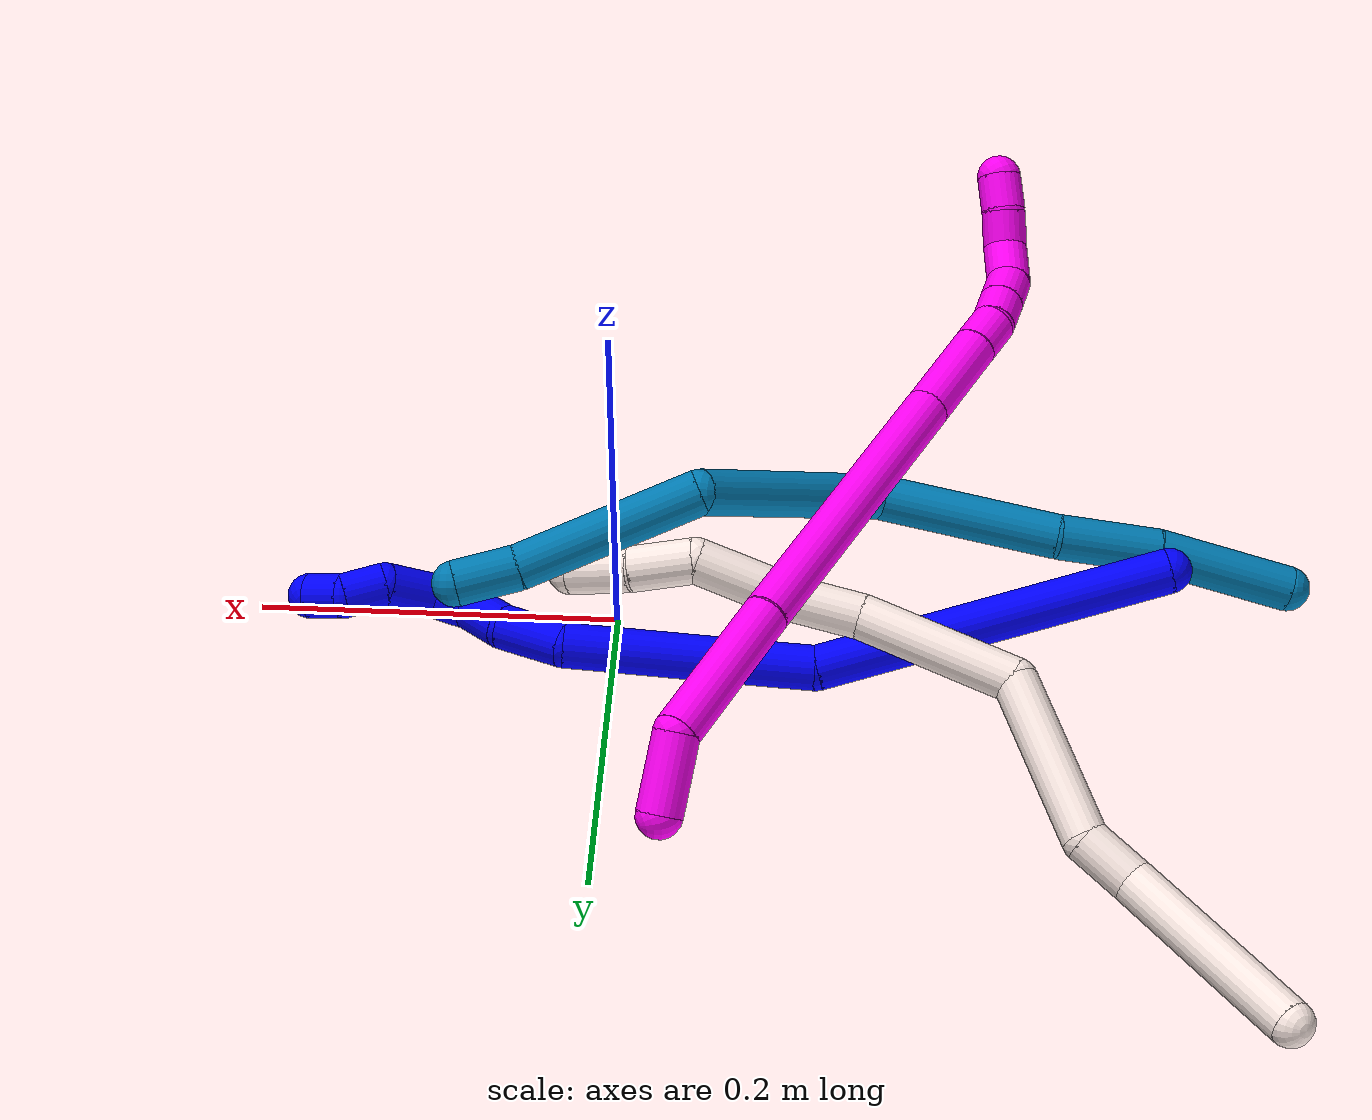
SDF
<sdf version="1.7">
 <world name="default">
  <model name="1">
   <static>0</static>
   <link name="1">
    <collision name="collision-cylinder-e_1_1_4">
     <pose>0.096106 0.019782 0.01966 -0.788488 1.28836 -0.605694</pose>
     <geometry><cylinder><radius>0.0125</radius><length>0.200142</length></cylinder></geometry>
     <surface>
      <friction><ode><mu>1.16</mu><mu2>1.16</mu2><slip1>0</slip1><slip2>0</slip2></ode></friction>
      <contact><ode><kp>1e+06</kp><kd>1</kd><max_vel>0</max_vel><min_depth>0.001</min_depth></ode></contact>
     </surface>
    </collision>
    <visual name="visual-cylinder-e_1_1_4">
     <pose>0.096106 0.019782 0.01966 -0.788488 1.28836 -0.605694</pose>
     <geometry><cylinder><radius>0.0125</radius><length>0.200142</length></cylinder></geometry>
     <material><ambient>0 0 1 1</ambient></material>
    </visual>
    <collision name="collision-cylinder-e_2_4_5">
     <pose>0.215535 0.038448 0.037711 2.53529 1.48702 2.48583</pose>
     <geometry><cylinder><radius>0.0125</radius><length>0.04681</length></cylinder></geometry>
     <surface>
      <friction><ode><mu>1.16</mu><mu2>1.16</mu2><slip1>0</slip1><slip2>0</slip2></ode></friction>
      <contact><ode><kp>1e+06</kp><kd>1</kd><max_vel>0</max_vel><min_depth>0.001</min_depth></ode></contact>
     </surface>
    </collision>
    <visual name="visual-cylinder-e_2_4_5">
     <pose>0.215535 0.038448 0.037711 2.53529 1.48702 2.48583</pose>
     <geometry><cylinder><radius>0.0125</radius><length>0.04681</length></cylinder></geometry>
     <material><ambient>0 0 1 1</ambient></material>
    </visual>
    <collision name="collision-cylinder-e_3_5_6">
     <pose>0.284691 0.032471 0.036363 1.51694 1.46499 1.41158</pose>
     <geometry><cylinder><radius>0.0125</radius><length>0.092182</length></cylinder></geometry>
     <surface>
      <friction><ode><mu>1.16</mu><mu2>1.16</mu2><slip1>0</slip1><slip2>0</slip2></ode></friction>
      <contact><ode><kp>1e+06</kp><kd>1</kd><max_vel>0</max_vel><min_depth>0.001</min_depth></ode></contact>
     </surface>
    </collision>
    <visual name="visual-cylinder-e_3_5_6">
     <pose>0.284691 0.032471 0.036363 1.51694 1.46499 1.41158</pose>
     <geometry><cylinder><radius>0.0125</radius><length>0.092182</length></cylinder></geometry>
     <material><ambient>0 0 1 1</ambient></material>
    </visual>
    <collision name="collision-cylinder-e_4_6_7">
     <pose>0.347883 0.026488 0.029603 2.98312 1.18197 2.90602</pose>
     <geometry><cylinder><radius>0.0125</radius><length>0.037518</length></cylinder></geometry>
     <surface>
      <friction><ode><mu>1.16</mu><mu2>1.16</mu2><slip1>0</slip1><slip2>0</slip2></ode></friction>
      <contact><ode><kp>1e+06</kp><kd>1</kd><max_vel>0</max_vel><min_depth>0.001</min_depth></ode></contact>
     </surface>
    </collision>
    <visual name="visual-cylinder-e_4_6_7">
     <pose>0.347883 0.026488 0.029603 2.98312 1.18197 2.90602</pose>
     <geometry><cylinder><radius>0.0125</radius><length>0.037518</length></cylinder></geometry>
     <material><ambient>0 0 1 1</ambient></material>
    </visual>
    <collision name="collision-cylinder-e_5_7_8">
     <pose>0.37542 0.024804 0.013856 3.0773 0.861122 3.00179</pose>
     <geometry><cylinder><radius>0.0125</radius><length>0.026834</length></cylinder></geometry>
     <surface>
      <friction><ode><mu>1.16</mu><mu2>1.16</mu2><slip1>0</slip1><slip2>0</slip2></ode></friction>
      <contact><ode><kp>1e+06</kp><kd>1</kd><max_vel>0</max_vel><min_depth>0.001</min_depth></ode></contact>
     </surface>
    </collision>
    <visual name="visual-cylinder-e_5_7_8">
     <pose>0.37542 0.024804 0.013856 3.0773 0.861122 3.00179</pose>
     <geometry><cylinder><radius>0.0125</radius><length>0.026834</length></cylinder></geometry>
     <material><ambient>0 0 1 1</ambient></material>
    </visual>
    <collision name="collision-cylinder-e_6_8_9">
     <pose>0.395554 0.022967 0.001731 2.78263 1.22099 2.63414</pose>
     <geometry><cylinder><radius>0.0125</radius><length>0.021196</length></cylinder></geometry>
     <surface>
      <friction><ode><mu>1.16</mu><mu2>1.16</mu2><slip1>0</slip1><slip2>0</slip2></ode></friction>
      <contact><ode><kp>1e+06</kp><kd>1</kd><max_vel>0</max_vel><min_depth>0.001</min_depth></ode></contact>
     </surface>
    </collision>
    <visual name="visual-cylinder-e_6_8_9">
     <pose>0.395554 0.022967 0.001731 2.78263 1.22099 2.63414</pose>
     <geometry><cylinder><radius>0.0125</radius><length>0.021196</length></cylinder></geometry>
     <material><ambient>0 0 1 1</ambient></material>
    </visual>
    <collision name="collision-cylinder-e_7_9_10">
     <pose>0.41833 0.014453 0.003796 0.924021 0.955072 0.504394</pose>
     <geometry><cylinder><radius>0.0125</radius><length>0.031408</length></cylinder></geometry>
     <surface>
      <friction><ode><mu>1.16</mu><mu2>1.16</mu2><slip1>0</slip1><slip2>0</slip2></ode></friction>
      <contact><ode><kp>1e+06</kp><kd>1</kd><max_vel>0</max_vel><min_depth>0.001</min_depth></ode></contact>
     </surface>
    </collision>
    <visual name="visual-cylinder-e_7_9_10">
     <pose>0.41833 0.014453 0.003796 0.924021 0.955072 0.504394</pose>
     <geometry><cylinder><radius>0.0125</radius><length>0.031408</length></cylinder></geometry>
     <material><ambient>0 0 1 1</ambient></material>
    </visual>
    <collision name="collision-cylinder-e_8_10_11">
     <pose>0.442259 0.00829 0.013271 -0.262026 1.21324 -0.18236</pose>
     <geometry><cylinder><radius>0.0125</radius><length>0.023718</length></cylinder></geometry>
     <surface>
      <friction><ode><mu>1.16</mu><mu2>1.16</mu2><slip1>0</slip1><slip2>0</slip2></ode></friction>
      <contact><ode><kp>1e+06</kp><kd>1</kd><max_vel>0</max_vel><min_depth>0.001</min_depth></ode></contact>
     </surface>
    </collision>
    <visual name="visual-cylinder-e_8_10_11">
     <pose>0.442259 0.00829 0.013271 -0.262026 1.21324 -0.18236</pose>
     <geometry><cylinder><radius>0.0125</radius><length>0.023718</length></cylinder></geometry>
     <material><ambient>0 0 1 1</ambient></material>
    </visual>
    <collision name="collision-cylinder-e_9_11_2">
     <pose>0.46304 0.010982 0.014878 -2.54902 1.27993 -2.36333</pose>
     <geometry><cylinder><radius>0.0125</radius><length>0.020191</length></cylinder></geometry>
     <surface>
      <friction><ode><mu>1.16</mu><mu2>1.16</mu2><slip1>0</slip1><slip2>0</slip2></ode></friction>
      <contact><ode><kp>1e+06</kp><kd>1</kd><max_vel>0</max_vel><min_depth>0.001</min_depth></ode></contact>
     </surface>
    </collision>
    <visual name="visual-cylinder-e_9_11_2">
     <pose>0.46304 0.010982 0.014878 -2.54902 1.27993 -2.36333</pose>
     <geometry><cylinder><radius>0.0125</radius><length>0.020191</length></cylinder></geometry>
     <material><ambient>0 0 1 1</ambient></material>
    </visual>
    <collision name="collision-sphere-2">
     <pose>0.472712 0.012599 0.012476 0 -0 0</pose>
     <geometry><sphere><radius>0.0125</radius></sphere></geometry>
     <surface>
      <friction><ode><mu>1.16</mu><mu2>1.16</mu2><slip1>0</slip1><slip2>0</slip2></ode></friction>
      <contact><ode><kp>1e+06</kp><kd>1</kd><max_vel>0</max_vel><min_depth>0.001</min_depth></ode></contact>
     </surface>
    </collision>
    <visual name="visual-sphere-2">
     <pose>0.472712 0.012599 0.012476 0 -0 0</pose>
     <geometry><sphere><radius>0.0125</radius></sphere></geometry>
     <material><ambient>0 0 1 1</ambient></material>
    </visual>
    <collision name="collision-sphere-11">
     <pose>0.453368 0.009365 0.01728 0 -0 0</pose>
     <geometry><sphere><radius>0.0125</radius></sphere></geometry>
     <surface>
      <friction><ode><mu>1.16</mu><mu2>1.16</mu2><slip1>0</slip1><slip2>0</slip2></ode></friction>
      <contact><ode><kp>1e+06</kp><kd>1</kd><max_vel>0</max_vel><min_depth>0.001</min_depth></ode></contact>
     </surface>
    </collision>
    <visual name="visual-sphere-11">
     <pose>0.453368 0.009365 0.01728 0 -0 0</pose>
     <geometry><sphere><radius>0.0125</radius></sphere></geometry>
     <material><ambient>0 0 1 1</ambient></material>
    </visual>
    <collision name="collision-sphere-10">
     <pose>0.43115 0.007214 0.009262 0 -0 0</pose>
     <geometry><sphere><radius>0.0125</radius></sphere></geometry>
     <surface>
      <friction><ode><mu>1.16</mu><mu2>1.16</mu2><slip1>0</slip1><slip2>0</slip2></ode></friction>
      <contact><ode><kp>1e+06</kp><kd>1</kd><max_vel>0</max_vel><min_depth>0.001</min_depth></ode></contact>
     </surface>
    </collision>
    <visual name="visual-sphere-10">
     <pose>0.43115 0.007214 0.009262 0 -0 0</pose>
     <geometry><sphere><radius>0.0125</radius></sphere></geometry>
     <material><ambient>0 0 1 1</ambient></material>
    </visual>
    <collision name="collision-sphere-9">
     <pose>0.40551 0.021691 -0.001669 0 -0 0</pose>
     <geometry><sphere><radius>0.0125</radius></sphere></geometry>
     <surface>
      <friction><ode><mu>1.16</mu><mu2>1.16</mu2><slip1>0</slip1><slip2>0</slip2></ode></friction>
      <contact><ode><kp>1e+06</kp><kd>1</kd><max_vel>0</max_vel><min_depth>0.001</min_depth></ode></contact>
     </surface>
    </collision>
    <visual name="visual-sphere-9">
     <pose>0.40551 0.021691 -0.001669 0 -0 0</pose>
     <geometry><sphere><radius>0.0125</radius></sphere></geometry>
     <material><ambient>0 0 1 1</ambient></material>
    </visual>
    <collision name="collision-sphere-4">
     <pose>0.192212 0.039564 0.03932 0 -0 0</pose>
     <geometry><sphere><radius>0.0125</radius></sphere></geometry>
     <surface>
      <friction><ode><mu>1.16</mu><mu2>1.16</mu2><slip1>0</slip1><slip2>0</slip2></ode></friction>
      <contact><ode><kp>1e+06</kp><kd>1</kd><max_vel>0</max_vel><min_depth>0.001</min_depth></ode></contact>
     </surface>
    </collision>
    <visual name="visual-sphere-4">
     <pose>0.192212 0.039564 0.03932 0 -0 0</pose>
     <geometry><sphere><radius>0.0125</radius></sphere></geometry>
     <material><ambient>0 0 1 1</ambient></material>
    </visual>
    <collision name="collision-sphere-1">
     <geometry><sphere><radius>0.0125</radius></sphere></geometry>
     <surface>
      <friction><ode><mu>1.16</mu><mu2>1.16</mu2><slip1>0</slip1><slip2>0</slip2></ode></friction>
      <contact><ode><kp>1e+06</kp><kd>1</kd><max_vel>0</max_vel><min_depth>0.001</min_depth></ode></contact>
     </surface>
    </collision>
    <visual name="visual-sphere-1">
     <geometry><sphere><radius>0.0125</radius></sphere></geometry>
     <material><ambient>0 0 1 1</ambient></material>
    </visual>
    <collision name="collision-sphere-8">
     <pose>0.385597 0.024243 0.005132 0 -0 0</pose>
     <geometry><sphere><radius>0.0125</radius></sphere></geometry>
     <surface>
      <friction><ode><mu>1.16</mu><mu2>1.16</mu2><slip1>0</slip1><slip2>0</slip2></ode></friction>
      <contact><ode><kp>1e+06</kp><kd>1</kd><max_vel>0</max_vel><min_depth>0.001</min_depth></ode></contact>
     </surface>
    </collision>
    <visual name="visual-sphere-8">
     <pose>0.385597 0.024243 0.005132 0 -0 0</pose>
     <geometry><sphere><radius>0.0125</radius></sphere></geometry>
     <material><ambient>0 0 1 1</ambient></material>
    </visual>
    <collision name="collision-sphere-5">
     <pose>0.238858 0.037332 0.036101 0 -0 0</pose>
     <geometry><sphere><radius>0.0125</radius></sphere></geometry>
     <surface>
      <friction><ode><mu>1.16</mu><mu2>1.16</mu2><slip1>0</slip1><slip2>0</slip2></ode></friction>
      <contact><ode><kp>1e+06</kp><kd>1</kd><max_vel>0</max_vel><min_depth>0.001</min_depth></ode></contact>
     </surface>
    </collision>
    <visual name="visual-sphere-5">
     <pose>0.238858 0.037332 0.036101 0 -0 0</pose>
     <geometry><sphere><radius>0.0125</radius></sphere></geometry>
     <material><ambient>0 0 1 1</ambient></material>
    </visual>
    <collision name="collision-sphere-6">
     <pose>0.330524 0.027611 0.036625 0 -0 0</pose>
     <geometry><sphere><radius>0.0125</radius></sphere></geometry>
     <surface>
      <friction><ode><mu>1.16</mu><mu2>1.16</mu2><slip1>0</slip1><slip2>0</slip2></ode></friction>
      <contact><ode><kp>1e+06</kp><kd>1</kd><max_vel>0</max_vel><min_depth>0.001</min_depth></ode></contact>
     </surface>
    </collision>
    <visual name="visual-sphere-6">
     <pose>0.330524 0.027611 0.036625 0 -0 0</pose>
     <geometry><sphere><radius>0.0125</radius></sphere></geometry>
     <material><ambient>0 0 1 1</ambient></material>
    </visual>
    <collision name="collision-sphere-7">
     <pose>0.365242 0.025366 0.02258 0 -0 0</pose>
     <geometry><sphere><radius>0.0125</radius></sphere></geometry>
     <surface>
      <friction><ode><mu>1.16</mu><mu2>1.16</mu2><slip1>0</slip1><slip2>0</slip2></ode></friction>
      <contact><ode><kp>1e+06</kp><kd>1</kd><max_vel>0</max_vel><min_depth>0.001</min_depth></ode></contact>
     </surface>
    </collision>
    <visual name="visual-sphere-7">
     <pose>0.365242 0.025366 0.02258 0 -0 0</pose>
     <geometry><sphere><radius>0.0125</radius></sphere></geometry>
     <material><ambient>0 0 1 1</ambient></material>
    </visual>
    <inertial>
     <pose>0.240111 0.023541 0.022611 0 -0 0</pose>
     <mass>0.5</mass>
     <inertia>
      <ixx>9.2e-05</ixx>
      <ixy>0</ixy>
      <ixz>0</ixz>
      <iyy>0.000652</iyy>
      <iyz>0</iyz>
      <izz>-0.000866</izz>
     </inertia>
    </inertial>
   </link>
   <pose>-0.3033 -0.001185 0.051091 -1.4149 0.034552 0.002685</pose>
  </model>
  <model name="9">
   <static>0</static>
   <link name="9">
    <collision name="collision-cylinder-e_1_1_4">
     <pose>0.013843 -0.013048 -0.033631 2.77149 0.366415 1.56055</pose>
     <geometry><cylinder><radius>0.0125</radius><length>0.077276</length></cylinder></geometry>
     <surface>
      <friction><ode><mu>1.16</mu><mu2>1.16</mu2><slip1>0</slip1><slip2>0</slip2></ode></friction>
      <contact><ode><kp>1e+06</kp><kd>1</kd><max_vel>0</max_vel><min_depth>0.001</min_depth></ode></contact>
     </surface>
    </collision>
    <visual name="visual-cylinder-e_1_1_4">
     <pose>0.013843 -0.013048 -0.033631 2.77149 0.366415 1.56055</pose>
     <geometry><cylinder><radius>0.0125</radius><length>0.077276</length></cylinder></geometry>
     <material><ambient>0 0.490196 0.709804 1</ambient></material>
    </visual>
    <collision name="collision-cylinder-e_2_4_5">
     <pose>0.038989 -0.032171 -0.092676 2.90696 0.408276 2.1065</pose>
     <geometry><cylinder><radius>0.0125</radius><length>0.056941</length></cylinder></geometry>
     <surface>
      <friction><ode><mu>1.16</mu><mu2>1.16</mu2><slip1>0</slip1><slip2>0</slip2></ode></friction>
      <contact><ode><kp>1e+06</kp><kd>1</kd><max_vel>0</max_vel><min_depth>0.001</min_depth></ode></contact>
     </surface>
    </collision>
    <visual name="visual-cylinder-e_2_4_5">
     <pose>0.038989 -0.032171 -0.092676 2.90696 0.408276 2.1065</pose>
     <geometry><cylinder><radius>0.0125</radius><length>0.056941</length></cylinder></geometry>
     <material><ambient>0 0.490196 0.709804 1</ambient></material>
    </visual>
    <collision name="collision-cylinder-e_3_5_6">
     <pose>0.059519 -0.050879 -0.166397 2.8858 0.182717 1.23801</pose>
     <geometry><cylinder><radius>0.0125</radius><length>0.101553</length></cylinder></geometry>
     <surface>
      <friction><ode><mu>1.16</mu><mu2>1.16</mu2><slip1>0</slip1><slip2>0</slip2></ode></friction>
      <contact><ode><kp>1e+06</kp><kd>1</kd><max_vel>0</max_vel><min_depth>0.001</min_depth></ode></contact>
     </surface>
    </collision>
    <visual name="visual-cylinder-e_3_5_6">
     <pose>0.059519 -0.050879 -0.166397 2.8858 0.182717 1.23801</pose>
     <geometry><cylinder><radius>0.0125</radius><length>0.101553</length></cylinder></geometry>
     <material><ambient>0 0.490196 0.709804 1</ambient></material>
    </visual>
    <collision name="collision-cylinder-e_4_6_7">
     <pose>0.119686 -0.074097 -0.249355 2.84514 0.952565 2.5781</pose>
     <geometry><cylinder><radius>0.0125</radius><length>0.125022</length></cylinder></geometry>
     <surface>
      <friction><ode><mu>1.16</mu><mu2>1.16</mu2><slip1>0</slip1><slip2>0</slip2></ode></friction>
      <contact><ode><kp>1e+06</kp><kd>1</kd><max_vel>0</max_vel><min_depth>0.001</min_depth></ode></contact>
     </surface>
    </collision>
    <visual name="visual-cylinder-e_4_6_7">
     <pose>0.119686 -0.074097 -0.249355 2.84514 0.952565 2.5781</pose>
     <geometry><cylinder><radius>0.0125</radius><length>0.125022</length></cylinder></geometry>
     <material><ambient>0 0.490196 0.709804 1</ambient></material>
    </visual>
    <collision name="collision-cylinder-e_5_7_8">
     <pose>0.188725 -0.067472 -0.329874 -2.78266 0.353872 -1.55629</pose>
     <geometry><cylinder><radius>0.0125</radius><length>0.104453</length></cylinder></geometry>
     <surface>
      <friction><ode><mu>1.16</mu><mu2>1.16</mu2><slip1>0</slip1><slip2>0</slip2></ode></friction>
      <contact><ode><kp>1e+06</kp><kd>1</kd><max_vel>0</max_vel><min_depth>0.001</min_depth></ode></contact>
     </surface>
    </collision>
    <visual name="visual-cylinder-e_5_7_8">
     <pose>0.188725 -0.067472 -0.329874 -2.78266 0.353872 -1.55629</pose>
     <geometry><cylinder><radius>0.0125</radius><length>0.104453</length></cylinder></geometry>
     <material><ambient>0 0.490196 0.709804 1</ambient></material>
    </visual>
    <collision name="collision-cylinder-e_6_8_2">
     <pose>0.213628 -0.047093 -0.391414 -2.94202 0.402357 -2.22885</pose>
     <geometry><cylinder><radius>0.0125</radius><length>0.034754</length></cylinder></geometry>
     <surface>
      <friction><ode><mu>1.16</mu><mu2>1.16</mu2><slip1>0</slip1><slip2>0</slip2></ode></friction>
      <contact><ode><kp>1e+06</kp><kd>1</kd><max_vel>0</max_vel><min_depth>0.001</min_depth></ode></contact>
     </surface>
    </collision>
    <visual name="visual-cylinder-e_6_8_2">
     <pose>0.213628 -0.047093 -0.391414 -2.94202 0.402357 -2.22885</pose>
     <geometry><cylinder><radius>0.0125</radius><length>0.034754</length></cylinder></geometry>
     <material><ambient>0 0.490196 0.709804 1</ambient></material>
    </visual>
    <collision name="collision-sphere-2">
     <pose>0.220432 -0.043923 -0.407086 0 -0 0</pose>
     <geometry><sphere><radius>0.0125</radius></sphere></geometry>
     <surface>
      <friction><ode><mu>1.16</mu><mu2>1.16</mu2><slip1>0</slip1><slip2>0</slip2></ode></friction>
      <contact><ode><kp>1e+06</kp><kd>1</kd><max_vel>0</max_vel><min_depth>0.001</min_depth></ode></contact>
     </surface>
    </collision>
    <visual name="visual-sphere-2">
     <pose>0.220432 -0.043923 -0.407086 0 -0 0</pose>
     <geometry><sphere><radius>0.0125</radius></sphere></geometry>
     <material><ambient>0 0.490196 0.709804 1</ambient></material>
    </visual>
    <collision name="collision-sphere-4">
     <pose>0.027686 -0.026096 -0.067261 0 -0 0</pose>
     <geometry><sphere><radius>0.0125</radius></sphere></geometry>
     <surface>
      <friction><ode><mu>1.16</mu><mu2>1.16</mu2><slip1>0</slip1><slip2>0</slip2></ode></friction>
      <contact><ode><kp>1e+06</kp><kd>1</kd><max_vel>0</max_vel><min_depth>0.001</min_depth></ode></contact>
     </surface>
    </collision>
    <visual name="visual-sphere-4">
     <pose>0.027686 -0.026096 -0.067261 0 -0 0</pose>
     <geometry><sphere><radius>0.0125</radius></sphere></geometry>
     <material><ambient>0 0.490196 0.709804 1</ambient></material>
    </visual>
    <collision name="collision-sphere-1">
     <geometry><sphere><radius>0.0125</radius></sphere></geometry>
     <surface>
      <friction><ode><mu>1.16</mu><mu2>1.16</mu2><slip1>0</slip1><slip2>0</slip2></ode></friction>
      <contact><ode><kp>1e+06</kp><kd>1</kd><max_vel>0</max_vel><min_depth>0.001</min_depth></ode></contact>
     </surface>
    </collision>
    <visual name="visual-sphere-1">
     <geometry><sphere><radius>0.0125</radius></sphere></geometry>
     <material><ambient>0 0.490196 0.709804 1</ambient></material>
    </visual>
    <collision name="collision-sphere-8">
     <pose>0.206823 -0.050263 -0.375743 0 -0 0</pose>
     <geometry><sphere><radius>0.0125</radius></sphere></geometry>
     <surface>
      <friction><ode><mu>1.16</mu><mu2>1.16</mu2><slip1>0</slip1><slip2>0</slip2></ode></friction>
      <contact><ode><kp>1e+06</kp><kd>1</kd><max_vel>0</max_vel><min_depth>0.001</min_depth></ode></contact>
     </surface>
    </collision>
    <visual name="visual-sphere-8">
     <pose>0.206823 -0.050263 -0.375743 0 -0 0</pose>
     <geometry><sphere><radius>0.0125</radius></sphere></geometry>
     <material><ambient>0 0.490196 0.709804 1</ambient></material>
    </visual>
    <collision name="collision-sphere-5">
     <pose>0.050293 -0.038246 -0.118091 0 -0 0</pose>
     <geometry><sphere><radius>0.0125</radius></sphere></geometry>
     <surface>
      <friction><ode><mu>1.16</mu><mu2>1.16</mu2><slip1>0</slip1><slip2>0</slip2></ode></friction>
      <contact><ode><kp>1e+06</kp><kd>1</kd><max_vel>0</max_vel><min_depth>0.001</min_depth></ode></contact>
     </surface>
    </collision>
    <visual name="visual-sphere-5">
     <pose>0.050293 -0.038246 -0.118091 0 -0 0</pose>
     <geometry><sphere><radius>0.0125</radius></sphere></geometry>
     <material><ambient>0 0.490196 0.709804 1</ambient></material>
    </visual>
    <collision name="collision-sphere-6">
     <pose>0.068746 -0.063512 -0.214704 0 -0 0</pose>
     <geometry><sphere><radius>0.0125</radius></sphere></geometry>
     <surface>
      <friction><ode><mu>1.16</mu><mu2>1.16</mu2><slip1>0</slip1><slip2>0</slip2></ode></friction>
      <contact><ode><kp>1e+06</kp><kd>1</kd><max_vel>0</max_vel><min_depth>0.001</min_depth></ode></contact>
     </surface>
    </collision>
    <visual name="visual-sphere-6">
     <pose>0.068746 -0.063512 -0.214704 0 -0 0</pose>
     <geometry><sphere><radius>0.0125</radius></sphere></geometry>
     <material><ambient>0 0.490196 0.709804 1</ambient></material>
    </visual>
    <collision name="collision-sphere-7">
     <pose>0.170627 -0.084681 -0.284005 0 -0 0</pose>
     <geometry><sphere><radius>0.0125</radius></sphere></geometry>
     <surface>
      <friction><ode><mu>1.16</mu><mu2>1.16</mu2><slip1>0</slip1><slip2>0</slip2></ode></friction>
      <contact><ode><kp>1e+06</kp><kd>1</kd><max_vel>0</max_vel><min_depth>0.001</min_depth></ode></contact>
     </surface>
    </collision>
    <visual name="visual-sphere-7">
     <pose>0.170627 -0.084681 -0.284005 0 -0 0</pose>
     <geometry><sphere><radius>0.0125</radius></sphere></geometry>
     <material><ambient>0 0.490196 0.709804 1</ambient></material>
    </visual>
    <inertial>
     <pose>0.10287 -0.05191 -0.208017 0 -0 0</pose>
     <mass>0.5</mass>
     <inertia>
      <ixx>4.8e-05</ixx>
      <ixy>0</ixy>
      <ixz>0</ixz>
      <iyy>0.000251</iyy>
      <iyz>0</iyz>
      <izz>-0.000208</izz>
     </inertia>
    </inertial>
   </link>
   <pose>-0.372024 -0.025121 0.019069 -1.35116 -0.498268 1.28058</pose>
  </model>
  <model name="10">
   <static>0</static>
   <link name="10">
    <collision name="collision-cylinder-e_1_1_4">
     <pose>-0.017926 0.002415 -0.011569 -2.93578 -0.987902 2.76262</pose>
     <geometry><cylinder><radius>0.0125</radius><length>0.042943</length></cylinder></geometry>
     <surface>
      <friction><ode><mu>1.16</mu><mu2>1.16</mu2><slip1>0</slip1><slip2>0</slip2></ode></friction>
      <contact><ode><kp>1e+06</kp><kd>1</kd><max_vel>0</max_vel><min_depth>0.001</min_depth></ode></contact>
     </surface>
    </collision>
    <visual name="visual-cylinder-e_1_1_4">
     <pose>-0.017926 0.002415 -0.011569 -2.93578 -0.987902 2.76262</pose>
     <geometry><cylinder><radius>0.0125</radius><length>0.042943</length></cylinder></geometry>
     <material><ambient>1 0 0.964706 1</ambient></material>
    </visual>
    <collision name="collision-cylinder-e_2_4_5">
     <pose>-0.055621 -0.009053 -0.060548 2.78623 -0.459996 -1.83308</pose>
     <geometry><cylinder><radius>0.0125</radius><length>0.089063</length></cylinder></geometry>
     <surface>
      <friction><ode><mu>1.16</mu><mu2>1.16</mu2><slip1>0</slip1><slip2>0</slip2></ode></friction>
      <contact><ode><kp>1e+06</kp><kd>1</kd><max_vel>0</max_vel><min_depth>0.001</min_depth></ode></contact>
     </surface>
    </collision>
    <visual name="visual-cylinder-e_2_4_5">
     <pose>-0.055621 -0.009053 -0.060548 2.78623 -0.459996 -1.83308</pose>
     <geometry><cylinder><radius>0.0125</radius><length>0.089063</length></cylinder></geometry>
     <material><ambient>1 0 0.964706 1</ambient></material>
    </visual>
    <collision name="collision-cylinder-e_3_5_6">
     <pose>-0.11244 -0.057923 -0.172702 2.70379 -0.421966 -1.5328</pose>
     <geometry><cylinder><radius>0.0125</radius><length>0.180924</length></cylinder></geometry>
     <surface>
      <friction><ode><mu>1.16</mu><mu2>1.16</mu2><slip1>0</slip1><slip2>0</slip2></ode></friction>
      <contact><ode><kp>1e+06</kp><kd>1</kd><max_vel>0</max_vel><min_depth>0.001</min_depth></ode></contact>
     </surface>
    </collision>
    <visual name="visual-cylinder-e_3_5_6">
     <pose>-0.11244 -0.057923 -0.172702 2.70379 -0.421966 -1.5328</pose>
     <geometry><cylinder><radius>0.0125</radius><length>0.180924</length></cylinder></geometry>
     <material><ambient>1 0 0.964706 1</ambient></material>
    </visual>
    <collision name="collision-cylinder-e_4_6_7">
     <pose>-0.161292 -0.102744 -0.270736 2.74212 -0.436792 -1.66263</pose>
     <geometry><cylinder><radius>0.0125</radius><length>0.055801</length></cylinder></geometry>
     <surface>
      <friction><ode><mu>1.16</mu><mu2>1.16</mu2><slip1>0</slip1><slip2>0</slip2></ode></friction>
      <contact><ode><kp>1e+06</kp><kd>1</kd><max_vel>0</max_vel><min_depth>0.001</min_depth></ode></contact>
     </surface>
    </collision>
    <visual name="visual-cylinder-e_4_6_7">
     <pose>-0.161292 -0.102744 -0.270736 2.74212 -0.436792 -1.66263</pose>
     <geometry><cylinder><radius>0.0125</radius><length>0.055801</length></cylinder></geometry>
     <material><ambient>1 0 0.964706 1</ambient></material>
    </visual>
    <collision name="collision-cylinder-e_5_7_8">
     <pose>-0.177768 -0.116916 -0.303494 2.7118 -0.421793 -1.55143</pose>
     <geometry><cylinder><radius>0.0125</radius><length>0.02283</length></cylinder></geometry>
     <surface>
      <friction><ode><mu>1.16</mu><mu2>1.16</mu2><slip1>0</slip1><slip2>0</slip2></ode></friction>
      <contact><ode><kp>1e+06</kp><kd>1</kd><max_vel>0</max_vel><min_depth>0.001</min_depth></ode></contact>
     </surface>
    </collision>
    <visual name="visual-cylinder-e_5_7_8">
     <pose>-0.177768 -0.116916 -0.303494 2.7118 -0.421793 -1.55143</pose>
     <geometry><cylinder><radius>0.0125</radius><length>0.02283</length></cylinder></geometry>
     <material><ambient>1 0 0.964706 1</ambient></material>
    </visual>
    <collision name="collision-cylinder-e_6_8_9">
     <pose>-0.187493 -0.126768 -0.31962 2.45013 -0.528816 -1.28913</pose>
     <geometry><cylinder><radius>0.0125</radius><length>0.020023</length></cylinder></geometry>
     <surface>
      <friction><ode><mu>1.16</mu><mu2>1.16</mu2><slip1>0</slip1><slip2>0</slip2></ode></friction>
      <contact><ode><kp>1e+06</kp><kd>1</kd><max_vel>0</max_vel><min_depth>0.001</min_depth></ode></contact>
     </surface>
    </collision>
    <visual name="visual-cylinder-e_6_8_9">
     <pose>-0.187493 -0.126768 -0.31962 2.45013 -0.528816 -1.28913</pose>
     <geometry><cylinder><radius>0.0125</radius><length>0.020023</length></cylinder></geometry>
     <material><ambient>1 0 0.964706 1</ambient></material>
    </visual>
    <collision name="collision-cylinder-e_7_9_10">
     <pose>-0.197737 -0.138334 -0.333177 2.42119 -0.514945 -1.22029</pose>
     <geometry><cylinder><radius>0.0125</radius><length>0.021092</length></cylinder></geometry>
     <surface>
      <friction><ode><mu>1.16</mu><mu2>1.16</mu2><slip1>0</slip1><slip2>0</slip2></ode></friction>
      <contact><ode><kp>1e+06</kp><kd>1</kd><max_vel>0</max_vel><min_depth>0.001</min_depth></ode></contact>
     </surface>
    </collision>
    <visual name="visual-cylinder-e_7_9_10">
     <pose>-0.197737 -0.138334 -0.333177 2.42119 -0.514945 -1.22029</pose>
     <geometry><cylinder><radius>0.0125</radius><length>0.021092</length></cylinder></geometry>
     <material><ambient>1 0 0.964706 1</ambient></material>
    </visual>
    <collision name="collision-cylinder-e_8_10_11">
     <pose>-0.212988 -0.150276 -0.345261 2.29298 -0.908298 -1.64828</pose>
     <geometry><cylinder><radius>0.0125</radius><length>0.025511</length></cylinder></geometry>
     <surface>
      <friction><ode><mu>1.16</mu><mu2>1.16</mu2><slip1>0</slip1><slip2>0</slip2></ode></friction>
      <contact><ode><kp>1e+06</kp><kd>1</kd><max_vel>0</max_vel><min_depth>0.001</min_depth></ode></contact>
     </surface>
    </collision>
    <visual name="visual-cylinder-e_8_10_11">
     <pose>-0.212988 -0.150276 -0.345261 2.29298 -0.908298 -1.64828</pose>
     <geometry><cylinder><radius>0.0125</radius><length>0.025511</length></cylinder></geometry>
     <material><ambient>1 0 0.964706 1</ambient></material>
    </visual>
    <collision name="collision-cylinder-e_9_11_12">
     <pose>-0.233214 -0.154739 -0.353658 -2.72395 -1.23817 2.56344</pose>
     <geometry><cylinder><radius>0.0125</radius><length>0.021516</length></cylinder></geometry>
     <surface>
      <friction><ode><mu>1.16</mu><mu2>1.16</mu2><slip1>0</slip1><slip2>0</slip2></ode></friction>
      <contact><ode><kp>1e+06</kp><kd>1</kd><max_vel>0</max_vel><min_depth>0.001</min_depth></ode></contact>
     </surface>
    </collision>
    <visual name="visual-cylinder-e_9_11_12">
     <pose>-0.233214 -0.154739 -0.353658 -2.72395 -1.23817 2.56344</pose>
     <geometry><cylinder><radius>0.0125</radius><length>0.021516</length></cylinder></geometry>
     <material><ambient>1 0 0.964706 1</ambient></material>
    </visual>
    <collision name="collision-cylinder-e_10_12_2">
     <pose>-0.253115 -0.153844 -0.359692 2.95597 -1.28385 -2.89384</pose>
     <geometry><cylinder><radius>0.0125</radius><length>0.020296</length></cylinder></geometry>
     <surface>
      <friction><ode><mu>1.16</mu><mu2>1.16</mu2><slip1>0</slip1><slip2>0</slip2></ode></friction>
      <contact><ode><kp>1e+06</kp><kd>1</kd><max_vel>0</max_vel><min_depth>0.001</min_depth></ode></contact>
     </surface>
    </collision>
    <visual name="visual-cylinder-e_10_12_2">
     <pose>-0.253115 -0.153844 -0.359692 2.95597 -1.28385 -2.89384</pose>
     <geometry><cylinder><radius>0.0125</radius><length>0.020296</length></cylinder></geometry>
     <material><ambient>1 0 0.964706 1</ambient></material>
    </visual>
    <collision name="collision-sphere-2">
     <pose>-0.262849 -0.154374 -0.362514 0 -0 0</pose>
     <geometry><sphere><radius>0.0125</radius></sphere></geometry>
     <surface>
      <friction><ode><mu>1.16</mu><mu2>1.16</mu2><slip1>0</slip1><slip2>0</slip2></ode></friction>
      <contact><ode><kp>1e+06</kp><kd>1</kd><max_vel>0</max_vel><min_depth>0.001</min_depth></ode></contact>
     </surface>
    </collision>
    <visual name="visual-sphere-2">
     <pose>-0.262849 -0.154374 -0.362514 0 -0 0</pose>
     <geometry><sphere><radius>0.0125</radius></sphere></geometry>
     <material><ambient>1 0 0.964706 1</ambient></material>
    </visual>
    <collision name="collision-sphere-12">
     <pose>-0.243382 -0.153314 -0.356869 0 -0 0</pose>
     <geometry><sphere><radius>0.0125</radius></sphere></geometry>
     <surface>
      <friction><ode><mu>1.16</mu><mu2>1.16</mu2><slip1>0</slip1><slip2>0</slip2></ode></friction>
      <contact><ode><kp>1e+06</kp><kd>1</kd><max_vel>0</max_vel><min_depth>0.001</min_depth></ode></contact>
     </surface>
    </collision>
    <visual name="visual-sphere-12">
     <pose>-0.243382 -0.153314 -0.356869 0 -0 0</pose>
     <geometry><sphere><radius>0.0125</radius></sphere></geometry>
     <material><ambient>1 0 0.964706 1</ambient></material>
    </visual>
    <collision name="collision-sphere-11">
     <pose>-0.223046 -0.156164 -0.350447 0 -0 0</pose>
     <geometry><sphere><radius>0.0125</radius></sphere></geometry>
     <surface>
      <friction><ode><mu>1.16</mu><mu2>1.16</mu2><slip1>0</slip1><slip2>0</slip2></ode></friction>
      <contact><ode><kp>1e+06</kp><kd>1</kd><max_vel>0</max_vel><min_depth>0.001</min_depth></ode></contact>
     </surface>
    </collision>
    <visual name="visual-sphere-11">
     <pose>-0.223046 -0.156164 -0.350447 0 -0 0</pose>
     <geometry><sphere><radius>0.0125</radius></sphere></geometry>
     <material><ambient>1 0 0.964706 1</ambient></material>
    </visual>
    <collision name="collision-sphere-10">
     <pose>-0.202931 -0.144389 -0.340075 0 -0 0</pose>
     <geometry><sphere><radius>0.0125</radius></sphere></geometry>
     <surface>
      <friction><ode><mu>1.16</mu><mu2>1.16</mu2><slip1>0</slip1><slip2>0</slip2></ode></friction>
      <contact><ode><kp>1e+06</kp><kd>1</kd><max_vel>0</max_vel><min_depth>0.001</min_depth></ode></contact>
     </surface>
    </collision>
    <visual name="visual-sphere-10">
     <pose>-0.202931 -0.144389 -0.340075 0 -0 0</pose>
     <geometry><sphere><radius>0.0125</radius></sphere></geometry>
     <material><ambient>1 0 0.964706 1</ambient></material>
    </visual>
    <collision name="collision-sphere-9">
     <pose>-0.192543 -0.13228 -0.326279 0 -0 0</pose>
     <geometry><sphere><radius>0.0125</radius></sphere></geometry>
     <surface>
      <friction><ode><mu>1.16</mu><mu2>1.16</mu2><slip1>0</slip1><slip2>0</slip2></ode></friction>
      <contact><ode><kp>1e+06</kp><kd>1</kd><max_vel>0</max_vel><min_depth>0.001</min_depth></ode></contact>
     </surface>
    </collision>
    <visual name="visual-sphere-9">
     <pose>-0.192543 -0.13228 -0.326279 0 -0 0</pose>
     <geometry><sphere><radius>0.0125</radius></sphere></geometry>
     <material><ambient>1 0 0.964706 1</ambient></material>
    </visual>
    <collision name="collision-sphere-4">
     <pose>-0.035852 0.004831 -0.023139 0 -0 0</pose>
     <geometry><sphere><radius>0.0125</radius></sphere></geometry>
     <surface>
      <friction><ode><mu>1.16</mu><mu2>1.16</mu2><slip1>0</slip1><slip2>0</slip2></ode></friction>
      <contact><ode><kp>1e+06</kp><kd>1</kd><max_vel>0</max_vel><min_depth>0.001</min_depth></ode></contact>
     </surface>
    </collision>
    <visual name="visual-sphere-4">
     <pose>-0.035852 0.004831 -0.023139 0 -0 0</pose>
     <geometry><sphere><radius>0.0125</radius></sphere></geometry>
     <material><ambient>1 0 0.964706 1</ambient></material>
    </visual>
    <collision name="collision-sphere-1">
     <geometry><sphere><radius>0.0125</radius></sphere></geometry>
     <surface>
      <friction><ode><mu>1.16</mu><mu2>1.16</mu2><slip1>0</slip1><slip2>0</slip2></ode></friction>
      <contact><ode><kp>1e+06</kp><kd>1</kd><max_vel>0</max_vel><min_depth>0.001</min_depth></ode></contact>
     </surface>
    </collision>
    <visual name="visual-sphere-1">
     <geometry><sphere><radius>0.0125</radius></sphere></geometry>
     <material><ambient>1 0 0.964706 1</ambient></material>
    </visual>
    <collision name="collision-sphere-8">
     <pose>-0.182442 -0.121256 -0.312962 0 -0 0</pose>
     <geometry><sphere><radius>0.0125</radius></sphere></geometry>
     <surface>
      <friction><ode><mu>1.16</mu><mu2>1.16</mu2><slip1>0</slip1><slip2>0</slip2></ode></friction>
      <contact><ode><kp>1e+06</kp><kd>1</kd><max_vel>0</max_vel><min_depth>0.001</min_depth></ode></contact>
     </surface>
    </collision>
    <visual name="visual-sphere-8">
     <pose>-0.182442 -0.121256 -0.312962 0 -0 0</pose>
     <geometry><sphere><radius>0.0125</radius></sphere></geometry>
     <material><ambient>1 0 0.964706 1</ambient></material>
    </visual>
    <collision name="collision-sphere-5">
     <pose>-0.075391 -0.022936 -0.097958 0 -0 0</pose>
     <geometry><sphere><radius>0.0125</radius></sphere></geometry>
     <surface>
      <friction><ode><mu>1.16</mu><mu2>1.16</mu2><slip1>0</slip1><slip2>0</slip2></ode></friction>
      <contact><ode><kp>1e+06</kp><kd>1</kd><max_vel>0</max_vel><min_depth>0.001</min_depth></ode></contact>
     </surface>
    </collision>
    <visual name="visual-sphere-5">
     <pose>-0.075391 -0.022936 -0.097958 0 -0 0</pose>
     <geometry><sphere><radius>0.0125</radius></sphere></geometry>
     <material><ambient>1 0 0.964706 1</ambient></material>
    </visual>
    <collision name="collision-sphere-6">
     <pose>-0.149489 -0.092911 -0.247445 0 -0 0</pose>
     <geometry><sphere><radius>0.0125</radius></sphere></geometry>
     <surface>
      <friction><ode><mu>1.16</mu><mu2>1.16</mu2><slip1>0</slip1><slip2>0</slip2></ode></friction>
      <contact><ode><kp>1e+06</kp><kd>1</kd><max_vel>0</max_vel><min_depth>0.001</min_depth></ode></contact>
     </surface>
    </collision>
    <visual name="visual-sphere-6">
     <pose>-0.149489 -0.092911 -0.247445 0 -0 0</pose>
     <geometry><sphere><radius>0.0125</radius></sphere></geometry>
     <material><ambient>1 0 0.964706 1</ambient></material>
    </visual>
    <collision name="collision-sphere-7">
     <pose>-0.173095 -0.112577 -0.294027 0 -0 0</pose>
     <geometry><sphere><radius>0.0125</radius></sphere></geometry>
     <surface>
      <friction><ode><mu>1.16</mu><mu2>1.16</mu2><slip1>0</slip1><slip2>0</slip2></ode></friction>
      <contact><ode><kp>1e+06</kp><kd>1</kd><max_vel>0</max_vel><min_depth>0.001</min_depth></ode></contact>
     </surface>
    </collision>
    <visual name="visual-sphere-7">
     <pose>-0.173095 -0.112577 -0.294027 0 -0 0</pose>
     <geometry><sphere><radius>0.0125</radius></sphere></geometry>
     <material><ambient>1 0 0.964706 1</ambient></material>
    </visual>
    <inertial>
     <pose>-0.125278 -0.070653 -0.192633 0 -0 0</pose>
     <mass>0.5</mass>
     <inertia>
      <ixx>-0.000553</ixx>
      <ixy>0</ixy>
      <ixz>0</ixz>
      <iyy>-0.00043</iyy>
      <iyz>0</iyz>
      <izz>0.000447</izz>
     </inertia>
    </inertial>
   </link>
   <pose>-0.038082 0.199605 0.053677 1.66613 0.736527 2.1409</pose>
  </model>
  <model name="11">
   <static>0</static>
   <link name="11">
    <collision name="collision-cylinder-e_1_1_4">
     <pose>0.007196 -0.020933 -0.055225 2.77927 0.121241 0.63995</pose>
     <geometry><cylinder><radius>0.0125</radius><length>0.118992</length></cylinder></geometry>
     <surface>
      <friction><ode><mu>1.16</mu><mu2>1.16</mu2><slip1>0</slip1><slip2>0</slip2></ode></friction>
      <contact><ode><kp>1e+06</kp><kd>1</kd><max_vel>0</max_vel><min_depth>0.001</min_depth></ode></contact>
     </surface>
    </collision>
    <visual name="visual-cylinder-e_1_1_4">
     <pose>0.007196 -0.020933 -0.055225 2.77927 0.121241 0.63995</pose>
     <geometry><cylinder><radius>0.0125</radius><length>0.118992</length></cylinder></geometry>
     <material><ambient>1 0.933333 0.909804 1</ambient></material>
    </visual>
    <collision name="collision-cylinder-e_2_4_5">
     <pose>0.021404 -0.051058 -0.122131 2.47494 0.440785 1.14857</pose>
     <geometry><cylinder><radius>0.0125</radius><length>0.032871</length></cylinder></geometry>
     <surface>
      <friction><ode><mu>1.16</mu><mu2>1.16</mu2><slip1>0</slip1><slip2>0</slip2></ode></friction>
      <contact><ode><kp>1e+06</kp><kd>1</kd><max_vel>0</max_vel><min_depth>0.001</min_depth></ode></contact>
     </surface>
    </collision>
    <visual name="visual-cylinder-e_2_4_5">
     <pose>0.021404 -0.051058 -0.122131 2.47494 0.440785 1.14857</pose>
     <geometry><cylinder><radius>0.0125</radius><length>0.032871</length></cylinder></geometry>
     <material><ambient>1 0.933333 0.909804 1</ambient></material>
    </visual>
    <collision name="collision-cylinder-e_3_5_6">
     <pose>0.027646 -0.094114 -0.167257 2.34994 -0.016179 -0.038712</pose>
     <geometry><cylinder><radius>0.0125</radius><length>0.095203</length></cylinder></geometry>
     <surface>
      <friction><ode><mu>1.16</mu><mu2>1.16</mu2><slip1>0</slip1><slip2>0</slip2></ode></friction>
      <contact><ode><kp>1e+06</kp><kd>1</kd><max_vel>0</max_vel><min_depth>0.001</min_depth></ode></contact>
     </surface>
    </collision>
    <visual name="visual-cylinder-e_3_5_6">
     <pose>0.027646 -0.094114 -0.167257 2.34994 -0.016179 -0.038712</pose>
     <geometry><cylinder><radius>0.0125</radius><length>0.095203</length></cylinder></geometry>
     <material><ambient>1 0.933333 0.909804 1</ambient></material>
    </visual>
    <collision name="collision-cylinder-e_4_6_7">
     <pose>0.05309 -0.14091 -0.234474 2.77594 0.627229 2.10531</pose>
     <geometry><cylinder><radius>0.0125</radius><length>0.089331</length></cylinder></geometry>
     <surface>
      <friction><ode><mu>1.16</mu><mu2>1.16</mu2><slip1>0</slip1><slip2>0</slip2></ode></friction>
      <contact><ode><kp>1e+06</kp><kd>1</kd><max_vel>0</max_vel><min_depth>0.001</min_depth></ode></contact>
     </surface>
    </collision>
    <visual name="visual-cylinder-e_4_6_7">
     <pose>0.05309 -0.14091 -0.234474 2.77594 0.627229 2.10531</pose>
     <geometry><cylinder><radius>0.0125</radius><length>0.089331</length></cylinder></geometry>
     <material><ambient>1 0.933333 0.909804 1</ambient></material>
    </visual>
    <collision name="collision-cylinder-e_5_7_8">
     <pose>0.093826 -0.15805 -0.280502 2.81074 0.842227 2.42801</pose>
     <geometry><cylinder><radius>0.0125</radius><length>0.038927</length></cylinder></geometry>
     <surface>
      <friction><ode><mu>1.16</mu><mu2>1.16</mu2><slip1>0</slip1><slip2>0</slip2></ode></friction>
      <contact><ode><kp>1e+06</kp><kd>1</kd><max_vel>0</max_vel><min_depth>0.001</min_depth></ode></contact>
     </surface>
    </collision>
    <visual name="visual-cylinder-e_5_7_8">
     <pose>0.093826 -0.15805 -0.280502 2.81074 0.842227 2.42801</pose>
     <geometry><cylinder><radius>0.0125</radius><length>0.038927</length></cylinder></geometry>
     <material><ambient>1 0.933333 0.909804 1</ambient></material>
    </visual>
    <collision name="collision-cylinder-e_6_8_9">
     <pose>0.129547 -0.172339 -0.306797 2.51891 0.886837 1.9506</pose>
     <geometry><cylinder><radius>0.0125</radius><length>0.054702</length></cylinder></geometry>
     <surface>
      <friction><ode><mu>1.16</mu><mu2>1.16</mu2><slip1>0</slip1><slip2>0</slip2></ode></friction>
      <contact><ode><kp>1e+06</kp><kd>1</kd><max_vel>0</max_vel><min_depth>0.001</min_depth></ode></contact>
     </surface>
    </collision>
    <visual name="visual-cylinder-e_6_8_9">
     <pose>0.129547 -0.172339 -0.306797 2.51891 0.886837 1.9506</pose>
     <geometry><cylinder><radius>0.0125</radius><length>0.054702</length></cylinder></geometry>
     <material><ambient>1 0.933333 0.909804 1</ambient></material>
    </visual>
    <collision name="collision-cylinder-e_7_9_10">
     <pose>0.164181 -0.179224 -0.33221 -2.86781 0.849484 -2.55028</pose>
     <geometry><cylinder><radius>0.0125</radius><length>0.035782</length></cylinder></geometry>
     <surface>
      <friction><ode><mu>1.16</mu><mu2>1.16</mu2><slip1>0</slip1><slip2>0</slip2></ode></friction>
      <contact><ode><kp>1e+06</kp><kd>1</kd><max_vel>0</max_vel><min_depth>0.001</min_depth></ode></contact>
     </surface>
    </collision>
    <visual name="visual-cylinder-e_7_9_10">
     <pose>0.164181 -0.179224 -0.33221 -2.86781 0.849484 -2.55028</pose>
     <geometry><cylinder><radius>0.0125</radius><length>0.035782</length></cylinder></geometry>
     <material><ambient>1 0.933333 0.909804 1</ambient></material>
    </visual>
    <collision name="collision-cylinder-e_8_10_2">
     <pose>0.189034 -0.174042 -0.356154 -2.98474 0.731257 -2.73667</pose>
     <geometry><cylinder><radius>0.0125</radius><length>0.034194</length></cylinder></geometry>
     <surface>
      <friction><ode><mu>1.16</mu><mu2>1.16</mu2><slip1>0</slip1><slip2>0</slip2></ode></friction>
      <contact><ode><kp>1e+06</kp><kd>1</kd><max_vel>0</max_vel><min_depth>0.001</min_depth></ode></contact>
     </surface>
    </collision>
    <visual name="visual-cylinder-e_8_10_2">
     <pose>0.189034 -0.174042 -0.356154 -2.98474 0.731257 -2.73667</pose>
     <geometry><cylinder><radius>0.0125</radius><length>0.034194</length></cylinder></geometry>
     <material><ambient>1 0.933333 0.909804 1</ambient></material>
    </visual>
    <collision name="collision-sphere-2">
     <pose>0.200451 -0.172054 -0.368724 0 -0 0</pose>
     <geometry><sphere><radius>0.0125</radius></sphere></geometry>
     <surface>
      <friction><ode><mu>1.16</mu><mu2>1.16</mu2><slip1>0</slip1><slip2>0</slip2></ode></friction>
      <contact><ode><kp>1e+06</kp><kd>1</kd><max_vel>0</max_vel><min_depth>0.001</min_depth></ode></contact>
     </surface>
    </collision>
    <visual name="visual-sphere-2">
     <pose>0.200451 -0.172054 -0.368724 0 -0 0</pose>
     <geometry><sphere><radius>0.0125</radius></sphere></geometry>
     <material><ambient>1 0.933333 0.909804 1</ambient></material>
    </visual>
    <collision name="collision-sphere-10">
     <pose>0.177616 -0.176029 -0.343585 0 -0 0</pose>
     <geometry><sphere><radius>0.0125</radius></sphere></geometry>
     <surface>
      <friction><ode><mu>1.16</mu><mu2>1.16</mu2><slip1>0</slip1><slip2>0</slip2></ode></friction>
      <contact><ode><kp>1e+06</kp><kd>1</kd><max_vel>0</max_vel><min_depth>0.001</min_depth></ode></contact>
     </surface>
    </collision>
    <visual name="visual-sphere-10">
     <pose>0.177616 -0.176029 -0.343585 0 -0 0</pose>
     <geometry><sphere><radius>0.0125</radius></sphere></geometry>
     <material><ambient>1 0.933333 0.909804 1</ambient></material>
    </visual>
    <collision name="collision-sphere-9">
     <pose>0.150746 -0.182418 -0.320835 0 -0 0</pose>
     <geometry><sphere><radius>0.0125</radius></sphere></geometry>
     <surface>
      <friction><ode><mu>1.16</mu><mu2>1.16</mu2><slip1>0</slip1><slip2>0</slip2></ode></friction>
      <contact><ode><kp>1e+06</kp><kd>1</kd><max_vel>0</max_vel><min_depth>0.001</min_depth></ode></contact>
     </surface>
    </collision>
    <visual name="visual-sphere-9">
     <pose>0.150746 -0.182418 -0.320835 0 -0 0</pose>
     <geometry><sphere><radius>0.0125</radius></sphere></geometry>
     <material><ambient>1 0.933333 0.909804 1</ambient></material>
    </visual>
    <collision name="collision-sphere-4">
     <pose>0.014391 -0.041866 -0.110449 0 -0 0</pose>
     <geometry><sphere><radius>0.0125</radius></sphere></geometry>
     <surface>
      <friction><ode><mu>1.16</mu><mu2>1.16</mu2><slip1>0</slip1><slip2>0</slip2></ode></friction>
      <contact><ode><kp>1e+06</kp><kd>1</kd><max_vel>0</max_vel><min_depth>0.001</min_depth></ode></contact>
     </surface>
    </collision>
    <visual name="visual-sphere-4">
     <pose>0.014391 -0.041866 -0.110449 0 -0 0</pose>
     <geometry><sphere><radius>0.0125</radius></sphere></geometry>
     <material><ambient>1 0.933333 0.909804 1</ambient></material>
    </visual>
    <collision name="collision-sphere-1">
     <geometry><sphere><radius>0.0125</radius></sphere></geometry>
     <surface>
      <friction><ode><mu>1.16</mu><mu2>1.16</mu2><slip1>0</slip1><slip2>0</slip2></ode></friction>
      <contact><ode><kp>1e+06</kp><kd>1</kd><max_vel>0</max_vel><min_depth>0.001</min_depth></ode></contact>
     </surface>
    </collision>
    <visual name="visual-sphere-1">
     <geometry><sphere><radius>0.0125</radius></sphere></geometry>
     <material><ambient>1 0.933333 0.909804 1</ambient></material>
    </visual>
    <collision name="collision-sphere-8">
     <pose>0.108348 -0.16226 -0.292758 0 -0 0</pose>
     <geometry><sphere><radius>0.0125</radius></sphere></geometry>
     <surface>
      <friction><ode><mu>1.16</mu><mu2>1.16</mu2><slip1>0</slip1><slip2>0</slip2></ode></friction>
      <contact><ode><kp>1e+06</kp><kd>1</kd><max_vel>0</max_vel><min_depth>0.001</min_depth></ode></contact>
     </surface>
    </collision>
    <visual name="visual-sphere-8">
     <pose>0.108348 -0.16226 -0.292758 0 -0 0</pose>
     <geometry><sphere><radius>0.0125</radius></sphere></geometry>
     <material><ambient>1 0.933333 0.909804 1</ambient></material>
    </visual>
    <collision name="collision-sphere-5">
     <pose>0.028416 -0.060249 -0.133813 0 -0 0</pose>
     <geometry><sphere><radius>0.0125</radius></sphere></geometry>
     <surface>
      <friction><ode><mu>1.16</mu><mu2>1.16</mu2><slip1>0</slip1><slip2>0</slip2></ode></friction>
      <contact><ode><kp>1e+06</kp><kd>1</kd><max_vel>0</max_vel><min_depth>0.001</min_depth></ode></contact>
     </surface>
    </collision>
    <visual name="visual-sphere-5">
     <pose>0.028416 -0.060249 -0.133813 0 -0 0</pose>
     <geometry><sphere><radius>0.0125</radius></sphere></geometry>
     <material><ambient>1 0.933333 0.909804 1</ambient></material>
    </visual>
    <collision name="collision-sphere-6">
     <pose>0.026875 -0.127979 -0.200701 0 -0 0</pose>
     <geometry><sphere><radius>0.0125</radius></sphere></geometry>
     <surface>
      <friction><ode><mu>1.16</mu><mu2>1.16</mu2><slip1>0</slip1><slip2>0</slip2></ode></friction>
      <contact><ode><kp>1e+06</kp><kd>1</kd><max_vel>0</max_vel><min_depth>0.001</min_depth></ode></contact>
     </surface>
    </collision>
    <visual name="visual-sphere-6">
     <pose>0.026875 -0.127979 -0.200701 0 -0 0</pose>
     <geometry><sphere><radius>0.0125</radius></sphere></geometry>
     <material><ambient>1 0.933333 0.909804 1</ambient></material>
    </visual>
    <collision name="collision-sphere-7">
     <pose>0.079304 -0.15384 -0.268246 0 -0 0</pose>
     <geometry><sphere><radius>0.0125</radius></sphere></geometry>
     <surface>
      <friction><ode><mu>1.16</mu><mu2>1.16</mu2><slip1>0</slip1><slip2>0</slip2></ode></friction>
      <contact><ode><kp>1e+06</kp><kd>1</kd><max_vel>0</max_vel><min_depth>0.001</min_depth></ode></contact>
     </surface>
    </collision>
    <visual name="visual-sphere-7">
     <pose>0.079304 -0.15384 -0.268246 0 -0 0</pose>
     <geometry><sphere><radius>0.0125</radius></sphere></geometry>
     <material><ambient>1 0.933333 0.909804 1</ambient></material>
    </visual>
    <inertial>
     <pose>0.064023 -0.107321 -0.198443 0 -0 0</pose>
     <mass>0.5</mass>
     <inertia><ixx>0.000309</ixx><ixy>0</ixy><ixz>0</ixz><iyy>3.5e-05</iyy><iyz>0</iyz><izz>2.3e-05</izz></inertia>
    </inertial>
   </link>
   <pose>-0.355698 0.28733 0.014611 -1.16026 -0.244588 0.549185</pose>
  </model>
 </world>
</sdf>
